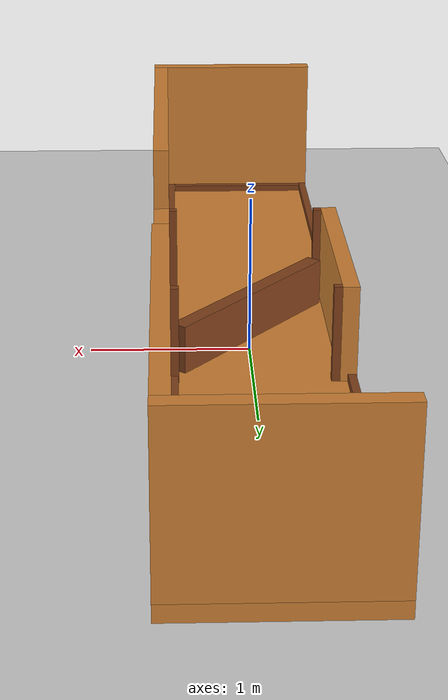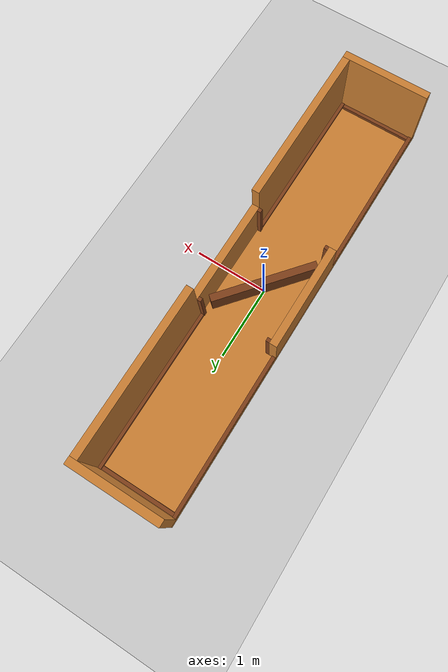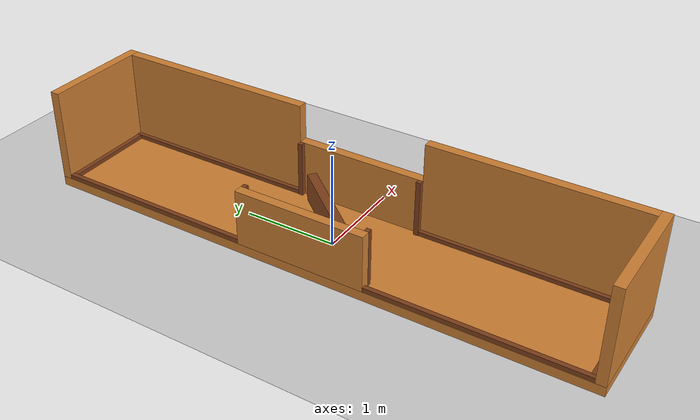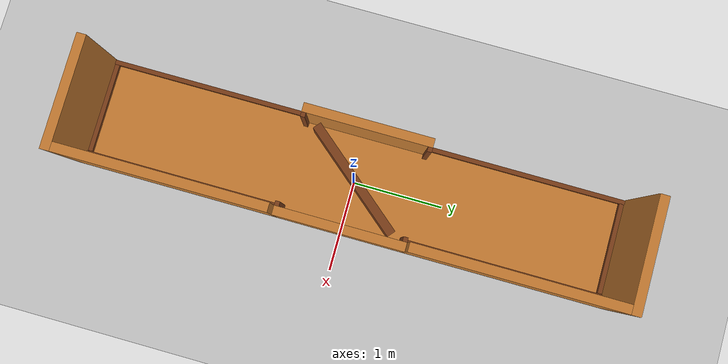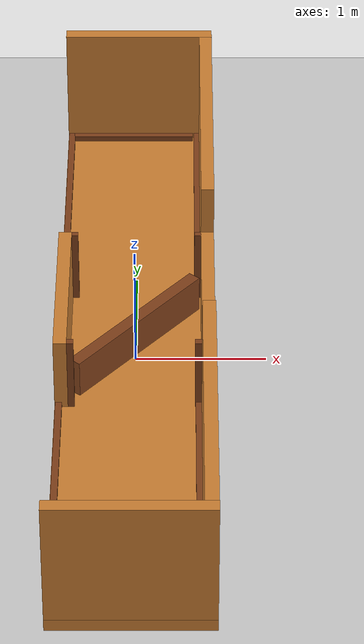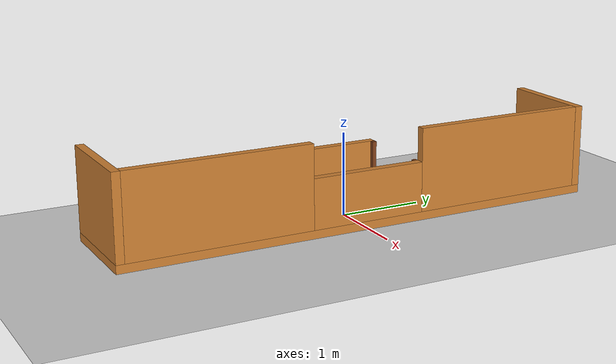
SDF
<?xml version='1.0'?>
<sdf version='1.9'>
  <world name='Obj5'>
    <physics name='1ms' type='ignored'>
      <max_step_size>0.001</max_step_size>
      <real_time_factor>1</real_time_factor>
      <real_time_update_rate>1000</real_time_update_rate>
    </physics>
    <plugin name='gz::sim::systems::Physics' filename='ignition-gazebo-physics-system' />
    <plugin name='gz::sim::systems::UserCommands' filename='ignition-gazebo-user-commands-system' />
    <plugin name='gz::sim::systems::SceneBroadcaster'
      filename='ignition-gazebo-scene-broadcaster-system' />
    <plugin name='gz::sim::systems::Contact' filename='ignition-gazebo-contact-system' />
    <gravity>0 0 -9.8</gravity>
    <magnetic_field>6e-06 2.3e-05 -4.2e-05</magnetic_field>
    <atmosphere type='adiabatic' />
    <scene>
      <ambient>0.4 0.4 0.4 1</ambient>
      <background>0.7 0.7 0.7 1</background>
      <shadows>true</shadows>
    </scene>
    <model name='ground_plane'>
      <static>true</static>
      <link name='link'>
        <collision name='collision'>
          <geometry>
            <plane>
              <normal>0 0 1</normal>
              <size>100 100</size>
            </plane>
          </geometry>
          <surface>
            <friction>
              <ode />
            </friction>
            <bounce />
            <contact />
          </surface>
        </collision>
        <visual name='visual'>
          <geometry>
            <plane>
              <normal>0 0 1</normal>
              <size>100 100</size>
            </plane>
          </geometry>
          <material>
            <ambient>0.8 0.8 0.8 1</ambient>
            <diffuse>0.8 0.8 0.8 1</diffuse>
            <specular>0.8 0.8 0.8 1</specular>
          </material>
        </visual>
        <pose>0 0 0 0 -0 0</pose>
        <inertial>
          <pose>0 0 0 0 -0 0</pose>
          <mass>1</mass>
          <inertia>
            <ixx>1</ixx>
            <ixy>0</ixy>
            <ixz>0</ixz>
            <iyy>1</iyy>
            <iyz>0</iyz>
            <izz>1</izz>
          </inertia>
        </inertial>
        <enable_wind>false</enable_wind>
      </link>
      <pose>0 0 0 0 -0 0</pose>
      <self_collide>false</self_collide>
    </model>

    <model name='Height_Rails'>

      <link name='Base'>
        <pose>0 0 0.05 0 0 0</pose>
        <inertial>
          <inertia>
            <ixx>0.16666</ixx>
            <ixy>0</ixy>
            <ixz>0</ixz>
            <iyy>0.16666</iyy>
            <iyz>0</iyz>
            <izz>0.16666</izz>
          </inertia>
          <mass>1</mass>
          <pose>0 0 0 0 -0 0</pose>
        </inertial>
        <collision name='Base_collision'>
          <geometry>
            <box>
              <size>1.2 6 0.1</size>
            </box>
          </geometry>
          <surface>
            <friction>
              <ode />
            </friction>
            <bounce />
            <contact />
          </surface>
        </collision>
        <visual name='Base_visual'>
          <geometry>
            <box>
              <size>1.2 6 0.1</size>
            </box>
          </geometry>
          <material>
            <ambient>0.8 0.5 0.2 1</ambient>
            <diffuse>0.8 0.5 0.2 1</diffuse>
            <specular>0.4 0.2 0.1 1</specular>
          </material>
        </visual>
        <pose>0 0 0 0 -0 0</pose>
        <enable_wind>false</enable_wind>
      </link>

      <link name='Pon1'>
        <pose relative_to='Base'>0 2.95 0.55 0 0 0</pose>
        <inertial>
          <inertia>
            <ixx>0.16666</ixx>
            <ixy>0</ixy>
            <ixz>0</ixz>
            <iyy>0.16666</iyy>
            <iyz>0</iyz>
            <izz>0.16666</izz>
          </inertia>
          <mass>1</mass>
          <pose>0 0 0 0 -0 0</pose>
        </inertial>
        <collision name='Pon1_collision'>
          <geometry>
            <box>
              <size>1.2 0.1 1</size>
            </box>
          </geometry>
          <surface>
            <friction>
              <ode />
            </friction>
            <bounce />
            <contact />
          </surface>
        </collision>
        <visual name='Pon1_visual'>
          <geometry>
            <box>
              <size>1.2 0.1 1</size>
            </box>
          </geometry>
          <material>
            <ambient>0.8 0.5 0.2 1</ambient>
            <diffuse>0.8 0.5 0.2 1</diffuse>
            <specular>0.4 0.2 0.1 1</specular>
          </material>
        </visual>
        <pose>0 0 0 0 -0 0</pose>
        <enable_wind>false</enable_wind>
      </link>

      <link name='Pon2'>
        <pose relative_to='Base'>0 -2.95 0.55 0 0 0</pose>
        <inertial>
          <inertia>
            <ixx>0.16666</ixx>
            <ixy>0</ixy>
            <ixz>0</ixz>
            <iyy>0.16666</iyy>
            <iyz>0</iyz>
            <izz>0.16666</izz>
          </inertia>
          <mass>1</mass>
          <pose>0 0 0 0 -0 0</pose>
        </inertial>
        <collision name='Pon2_collision'>
          <geometry>
            <box>
              <size>1.2 0.1 1</size>
            </box>
          </geometry>
          <surface>
            <friction>
              <ode />
            </friction>
            <bounce />
            <contact />
          </surface>
        </collision>
        <visual name='Pon2_visual'>
          <geometry>
            <box>
              <size>1.2 0.1 1</size>
            </box>
          </geometry>
          <material>
            <ambient>0.8 0.5 0.2 1</ambient>
            <diffuse>0.8 0.5 0.2 1</diffuse>
            <specular>0.4 0.2 0.1 1</specular>
          </material>
        </visual>
        <pose>0 0 0 0 -0 0</pose>
        <enable_wind>false</enable_wind>
      </link>

      <link name='Par1'>
        <pose relative_to='Base'>0.55 1.8 0.55 0 1.57 0</pose>
        <inertial>
          <inertia>
            <ixx>0.16666</ixx>
            <ixy>0</ixy>
            <ixz>0</ixz>
            <iyy>0.16666</iyy>
            <iyz>0</iyz>
            <izz>0.16666</izz>
          </inertia>
          <mass>1</mass>
          <pose>0 0 0 0 -0 0</pose>
        </inertial>
        <collision name='Par1_collision'>
          <geometry>
            <box>
              <size>1 2.2 0.1</size>
            </box>
          </geometry>
          <surface>
            <friction>
              <ode />
            </friction>
            <bounce />
            <contact />
          </surface>
        </collision>
        <visual name='Par1_visual'>
          <geometry>
            <box>
              <size>1 2.2 0.1</size>
            </box>
          </geometry>
          <material>
            <ambient>0.8 0.5 0.2 1</ambient>
            <diffuse>0.8 0.5 0.2 1</diffuse>
            <specular>0.4 0.2 0.1 1</specular>
          </material>
        </visual>
        <pose>0 0 0 0 -0 0</pose>
        <enable_wind>false</enable_wind>
      </link>

      <link name='Par2'>
        <pose relative_to='Base'>0.55 -1.8 0.55 0 1.57 0</pose>
        <inertial>
          <inertia>
            <ixx>0.16666</ixx>
            <ixy>0</ixy>
            <ixz>0</ixz>
            <iyy>0.16666</iyy>
            <iyz>0</iyz>
            <izz>0.16666</izz>
          </inertia>
          <mass>1</mass>
          <pose>0 0 0 0 -0 0</pose>
        </inertial>
        <collision name='Par2_collision'>
          <geometry>
            <box>
              <size>1 2.2 0.1</size>
            </box>
          </geometry>
          <surface>
            <friction>
              <ode />
            </friction>
            <bounce />
            <contact />
          </surface>
        </collision>
        <visual name='Par2_visual'>
          <geometry>
            <box>
              <size>1 2.2 0.1</size>
            </box>
          </geometry>
          <material>
            <ambient>0.8 0.5 0.2 1</ambient>
            <diffuse>0.8 0.5 0.2 1</diffuse>
            <specular>0.4 0.2 0.1 1</specular>
          </material>
        </visual>
        <pose>0 0 0 0 -0 0</pose>
        <enable_wind>false</enable_wind>
      </link>

      <link name='ParM1'>
        <pose relative_to='Base'>0.55 0 0.35 0 1.57 0</pose>
        <inertial>
          <inertia>
            <ixx>0.16666</ixx>
            <ixy>0</ixy>
            <ixz>0</ixz>
            <iyy>0.16666</iyy>
            <iyz>0</iyz>
            <izz>0.16666</izz>
          </inertia>
          <mass>1</mass>
          <pose>0 0 0 0 -0 0</pose>
        </inertial>
        <collision name='ParM1_collision'>
          <geometry>
            <box>
              <size>0.6 1.4 0.1</size>
            </box>
          </geometry>
          <surface>
            <friction>
              <ode />
            </friction>
            <bounce />
            <contact />
          </surface>
        </collision>
        <visual name='ParM1_visual'>
          <geometry>
            <box>
              <size>0.6 1.4 0.1</size>
            </box>
          </geometry>
          <material>
            <ambient>0.8 0.5 0.2 1</ambient>
            <diffuse>0.8 0.5 0.2 1</diffuse>
            <specular>0.4 0.2 0.1 1</specular>
          </material>
        </visual>
        <pose>0 0 0 0 -0 0</pose>
        <enable_wind>false</enable_wind>
      </link>

      <link name='ParM2'>
        <pose relative_to='Base'>-0.55 0 0.35 0 1.57 0</pose>
        <inertial>
          <inertia>
            <ixx>0.16666</ixx>
            <ixy>0</ixy>
            <ixz>0</ixz>
            <iyy>0.16666</iyy>
            <iyz>0</iyz>
            <izz>0.16666</izz>
          </inertia>
          <mass>1</mass>
          <pose>0 0 0 0 -0 0</pose>
        </inertial>
        <collision name='ParM2_collision'>
          <geometry>
            <box>
              <size>0.6 1.4 0.1</size>
            </box>
          </geometry>
          <surface>
            <friction>
              <ode />
            </friction>
            <bounce />
            <contact />
          </surface>
        </collision>
        <visual name='ParM2_visual'>
          <geometry>
            <box>
              <size>0.6 1.4 0.1</size>
            </box>
          </geometry>
          <material>
            <ambient>0.8 0.5 0.2 1</ambient>
            <diffuse>0.8 0.5 0.2 1</diffuse>
            <specular>0.4 0.2 0.1 1</specular>
          </material>
        </visual>
        <pose>0 0 0 0 -0 0</pose>
        <enable_wind>false</enable_wind>
      </link>

      <link name='Meio'>
        <pose relative_to='Base'>0 0 0.2 0 1.57 -0.7</pose>
        <inertial>
          <inertia>
            <ixx>0.16666</ixx>
            <ixy>0</ixy>
            <ixz>0</ixz>
            <iyy>0.16666</iyy>
            <iyz>0</iyz>
            <izz>0.16666</izz>
          </inertia>
          <mass>1</mass>
          <pose>0 0 0 0 -0 0</pose>
        </inertial>
        <collision name='Meio_collision'>
          <geometry>
            <box>
              <size>0.3 1.6 0.1</size>
            </box>
          </geometry>
          <surface>
            <friction>
              <ode />
            </friction>
            <bounce />
            <contact />
          </surface>
        </collision>
        <visual name='Meio_visual'>
          <geometry>
            <box>
              <size>0.3 1.4 0.1</size>
            </box>
          </geometry>
          <material>
            <ambient>0.5 0.25 0.1 1</ambient>
            <diffuse>0.5 0.25 0.1 1</diffuse>
            <specular>0.3 0.15 0.05 1</specular>
          </material>
        </visual>
        <pose>0 0 0 0 -0 0</pose>
        <enable_wind>false</enable_wind>
      </link>

      <link name='BarA1'>
        <pose relative_to='Base'>0.48 1.8 0.07 0 0 0</pose>
        <inertial>
          <inertia>
            <ixx>0.16666</ixx>
            <ixy>0</ixy>
            <ixz>0</ixz>
            <iyy>0.16666</iyy>
            <iyz>0</iyz>
            <izz>0.16666</izz>
          </inertia>
          <mass>1</mass>
          <pose>0 0 0 0 -0 0</pose>
        </inertial>
        <collision name='BarA1_collision'>
          <geometry>
            <box>
              <size>0.05 2.2 0.05</size>
            </box>
          </geometry>
          <surface>
            <friction>
              <ode />
            </friction>
            <bounce />
            <contact />
          </surface>
        </collision>
        <visual name='BarA1_visual'>
          <geometry>
            <box>
              <size>0.05 2.2 0.05</size>
            </box>
          </geometry>
          <material>
            <ambient>0.5 0.25 0.1 1</ambient>
            <diffuse>0.5 0.25 0.1 1</diffuse>
            <specular>0.3 0.15 0.05 1</specular>
          </material>
        </visual>
        <pose>0 0 0 0 -0 0</pose>
        <enable_wind>false</enable_wind>
      </link>

      <link name='BarA2'>
        <pose relative_to='Base'>-0.57 1.8 0.07 0 0 0</pose>
        <inertial>
          <inertia>
            <ixx>0.16666</ixx>
            <ixy>0</ixy>
            <ixz>0</ixz>
            <iyy>0.16666</iyy>
            <iyz>0</iyz>
            <izz>0.16666</izz>
          </inertia>
          <mass>1</mass>
          <pose>0 0 0 0 -0 0</pose>
        </inertial>
        <collision name='BarA2_collision'>
          <geometry>
            <box>
              <size>0.05 2.2 0.05</size>
            </box>
          </geometry>
          <surface>
            <friction>
              <ode />
            </friction>
            <bounce />
            <contact />
          </surface>
        </collision>
        <visual name='BarA2_visual'>
          <geometry>
            <box>
              <size>0.05 2.2 0.05</size>
            </box>
          </geometry>
          <material>
            <ambient>0.5 0.25 0.1 1</ambient>
            <diffuse>0.5 0.25 0.1 1</diffuse>
            <specular>0.3 0.15 0.05 1</specular>
          </material>
        </visual>
        <pose>0 0 0 0 -0 0</pose>
        <enable_wind>false</enable_wind>
      </link>

      <link name='BarA3'>
        <pose relative_to='Base'>-0.57 -1.8 0.07 0 0 0</pose>
        <inertial>
          <inertia>
            <ixx>0.16666</ixx>
            <ixy>0</ixy>
            <ixz>0</ixz>
            <iyy>0.16666</iyy>
            <iyz>0</iyz>
            <izz>0.16666</izz>
          </inertia>
          <mass>1</mass>
          <pose>0 0 0 0 -0 0</pose>
        </inertial>
        <collision name='BarA3_collision'>
          <geometry>
            <box>
              <size>0.05 2.2 0.05</size>
            </box>
          </geometry>
          <surface>
            <friction>
              <ode />
            </friction>
            <bounce />
            <contact />
          </surface>
        </collision>
        <visual name='BarA3_visual'>
          <geometry>
            <box>
              <size>0.05 2.2 0.05</size>
            </box>
          </geometry>
          <material>
            <ambient>0.5 0.25 0.1 1</ambient>
            <diffuse>0.5 0.25 0.1 1</diffuse>
            <specular>0.3 0.15 0.05 1</specular>
          </material>
        </visual>
        <pose>0 0 0 0 -0 0</pose>
        <enable_wind>false</enable_wind>
      </link>

      <link name='BarA4'>
        <pose relative_to='Base'>0.48 -1.8 0.07 0 0 0</pose>
        <inertial>
          <inertia>
            <ixx>0.16666</ixx>
            <ixy>0</ixy>
            <ixz>0</ixz>
            <iyy>0.16666</iyy>
            <iyz>0</iyz>
            <izz>0.16666</izz>
          </inertia>
          <mass>1</mass>
          <pose>0 0 0 0 -0 0</pose>
        </inertial>
        <collision name='BarA4_collision'>
          <geometry>
            <box>
              <size>0.05 2.2 0.05</size>
            </box>
          </geometry>
          <surface>
            <friction>
              <ode />
            </friction>
            <bounce />
            <contact />
          </surface>
        </collision>
        <visual name='BarA4_visual'>
          <geometry>
            <box>
              <size>0.05 2.2 0.05</size>
            </box>
          </geometry>
          <material>
            <ambient>0.5 0.25 0.1 1</ambient>
            <diffuse>0.5 0.25 0.1 1</diffuse>
            <specular>0.3 0.15 0.05 1</specular>
          </material>
        </visual>
        <pose>0 0 0 0 -0 0</pose>
        <enable_wind>false</enable_wind>
      </link>

      <link name='BarP1'>
        <pose relative_to='Base'>-0.05 2.87 0.07 0 0 0</pose>
        <inertial>
          <inertia>
            <ixx>0.16666</ixx>
            <ixy>0</ixy>
            <ixz>0</ixz>
            <iyy>0.16666</iyy>
            <iyz>0</iyz>
            <izz>0.16666</izz>
          </inertia>
          <mass>1</mass>
          <pose>0 0 0 0 -0 0</pose>
        </inertial>
        <collision name='BarP1_collision'>
          <geometry>
            <box>
              <size>1 0.05 0.05</size>
            </box>
          </geometry>
          <surface>
            <friction>
              <ode />
            </friction>
            <bounce />
            <contact />
          </surface>
        </collision>
        <visual name='BarP1_visual'>
          <geometry>
            <box>
              <size>1 0.05 0.05</size>
            </box>
          </geometry>
          <material>
            <ambient>0.5 0.25 0.1 1</ambient>
            <diffuse>0.5 0.25 0.1 1</diffuse>
            <specular>0.3 0.15 0.05 1</specular>
          </material>
        </visual>
        <pose>0 0 0 0 -0 0</pose>
        <enable_wind>false</enable_wind>
      </link>

      <link name='BarP2'>
        <pose relative_to='Base'>-0.05 -2.87 0.07 0 0 0</pose>
        <inertial>
          <inertia>
            <ixx>0.16666</ixx>
            <ixy>0</ixy>
            <ixz>0</ixz>
            <iyy>0.16666</iyy>
            <iyz>0</iyz>
            <izz>0.16666</izz>
          </inertia>
          <mass>1</mass>
          <pose>0 0 0 0 -0 0</pose>
        </inertial>
        <collision name='BarP2_collision'>
          <geometry>
            <box>
              <size>1 0.05 0.05</size>
            </box>
          </geometry>
          <surface>
            <friction>
              <ode />
            </friction>
            <bounce />
            <contact />
          </surface>
        </collision>
        <visual name='BarP2_visual'>
          <geometry>
            <box>
              <size>1 0.05 0.05</size>
            </box>
          </geometry>
          <material>
            <ambient>0.5 0.25 0.1 1</ambient>
            <diffuse>0.5 0.25 0.1 1</diffuse>
            <specular>0.3 0.15 0.05 1</specular>
          </material>
        </visual>
        <pose>0 0 0 0 -0 0</pose>
        <enable_wind>false</enable_wind>
      </link>

      <link name='BarM1'>
        <pose relative_to='Base'>0.475 0.675 0.35 0 0 0</pose>
        <inertial>
          <inertia>
            <ixx>0.16666</ixx>
            <ixy>0</ixy>
            <ixz>0</ixz>
            <iyy>0.16666</iyy>
            <iyz>0</iyz>
            <izz>0.16666</izz>
          </inertia>
          <mass>1</mass>
          <pose>0 0 0 0 -0 0</pose>
        </inertial>
        <collision name='BarM1_collision'>
          <geometry>
            <box>
              <size>0.05 0.05 0.6</size>
            </box>
          </geometry>
          <surface>
            <friction>
              <ode />
            </friction>
            <bounce />
            <contact />
          </surface>
        </collision>
        <visual name='BarM1_visual'>
          <geometry>
            <box>
              <size>0.05 0.05 0.6</size>
            </box>
          </geometry>
          <material>
            <ambient>0.5 0.25 0.1 1</ambient>
            <diffuse>0.5 0.25 0.1 1</diffuse>
            <specular>0.3 0.15 0.05 1</specular>
          </material>
        </visual>
        <pose>0 0 0 0 -0 0</pose>
        <enable_wind>false</enable_wind>
      </link>

      <link name='BarM2'>
        <pose relative_to='Base'>0.475 -0.675 0.35 0 0 0</pose>
        <inertial>
          <inertia>
            <ixx>0.16666</ixx>
            <ixy>0</ixy>
            <ixz>0</ixz>
            <iyy>0.16666</iyy>
            <iyz>0</iyz>
            <izz>0.16666</izz>
          </inertia>
          <mass>1</mass>
          <pose>0 0 0 0 -0 0</pose>
        </inertial>
        <collision name='BarM2_collision'>
          <geometry>
            <box>
              <size>0.05 0.05 0.6</size>
            </box>
          </geometry>
          <surface>
            <friction>
              <ode />
            </friction>
            <bounce />
            <contact />
          </surface>
        </collision>
        <visual name='BarM2_visual'>
          <geometry>
            <box>
              <size>0.05 0.05 0.6</size>
            </box>
          </geometry>
          <material>
            <ambient>0.5 0.25 0.1 1</ambient>
            <diffuse>0.5 0.25 0.1 1</diffuse>
            <specular>0.3 0.15 0.05 1</specular>
          </material>
        </visual>
        <pose>0 0 0 0 -0 0</pose>
        <enable_wind>false</enable_wind>
      </link>

      <link name='BarM3'>
        <pose relative_to='Base'>-0.475 0.675 0.35 0 0 0</pose>
        <inertial>
          <inertia>
            <ixx>0.16666</ixx>
            <ixy>0</ixy>
            <ixz>0</ixz>
            <iyy>0.16666</iyy>
            <iyz>0</iyz>
            <izz>0.16666</izz>
          </inertia>
          <mass>1</mass>
          <pose>0 0 0 0 -0 0</pose>
        </inertial>
        <collision name='BarM3_collision'>
          <geometry>
            <box>
              <size>0.05 0.05 0.6</size>
            </box>
          </geometry>
          <surface>
            <friction>
              <ode />
            </friction>
            <bounce />
            <contact />
          </surface>
        </collision>
        <visual name='BarM3_visual'>
          <geometry>
            <box>
              <size>0.05 0.05 0.6</size>
            </box>
          </geometry>
          <material>
            <ambient>0.5 0.25 0.1 1</ambient>
            <diffuse>0.5 0.25 0.1 1</diffuse>
            <specular>0.3 0.15 0.05 1</specular>
          </material>
        </visual>
        <pose>0 0 0 0 -0 0</pose>
        <enable_wind>false</enable_wind>
      </link>

      <link name='BarM4'>
        <pose relative_to='Base'>-0.475 -0.675 0.35 0 0 0</pose>
        <inertial>
          <inertia>
            <ixx>0.16666</ixx>
            <ixy>0</ixy>
            <ixz>0</ixz>
            <iyy>0.16666</iyy>
            <iyz>0</iyz>
            <izz>0.16666</izz>
          </inertia>
          <mass>1</mass>
          <pose>0 0 0 0 -0 0</pose>
        </inertial>
        <collision name='BarM4_collision'>
          <geometry>
            <box>
              <size>0.05 0.05 0.6</size>
            </box>
          </geometry>
          <surface>
            <friction>
              <ode />
            </friction>
            <bounce />
            <contact />
          </surface>
        </collision>
        <visual name='BarM4_visual'>
          <geometry>
            <box>
              <size>0.05 0.05 0.6</size>
            </box>
          </geometry>
          <material>
            <ambient>0.5 0.25 0.1 1</ambient>
            <diffuse>0.5 0.25 0.1 1</diffuse>
            <specular>0.3 0.15 0.05 1</specular>
          </material>
        </visual>
        <pose>0 0 0 0 -0 0</pose>
        <enable_wind>false</enable_wind>
      </link>

      <static>true</static>
      <self_collide>false</self_collide>

    </model>
    <light name='sun' type='directional'>
      <pose>0 0 10 0 -0 0</pose>
      <cast_shadows>true</cast_shadows>
      <intensity>1</intensity>
      <direction>0.5 0.1 -0.9</direction>
      <diffuse>0.8 0.8 0.8 1</diffuse>
      <specular>0.2 0.2 0.2 1</specular>
      <attenuation>
        <range>1000</range>
        <linear>0.01</linear>
        <constant>0.90000000000000002</constant>
        <quadratic>0.001</quadratic>
      </attenuation>
      <spot>
        <inner_angle>0</inner_angle>
        <outer_angle>0</outer_angle>
        <falloff>0</falloff>
      </spot>
    </light>
  </world>
</sdf>
